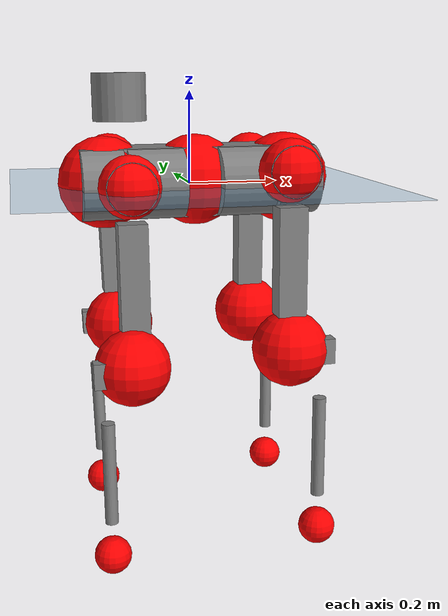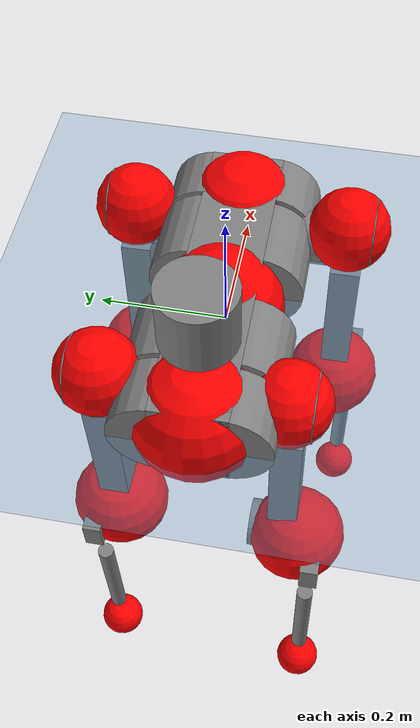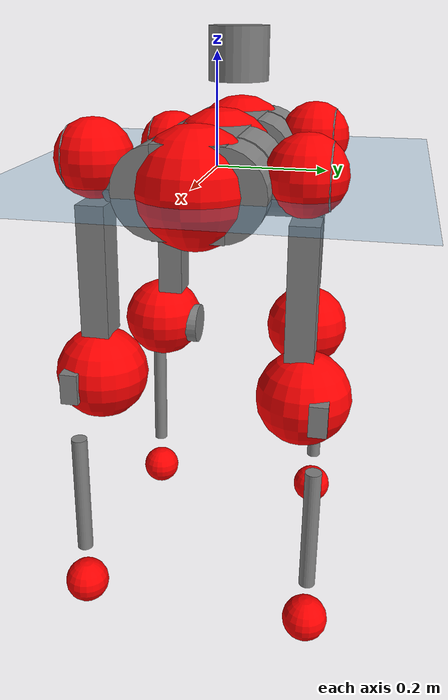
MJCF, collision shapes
<mujoco model="anymal_c">
  <compiler angle="radian" assetdir="assets" balanceinertia="true" inertiafromgeom="false"/>

  <option timestep="0.005" density="1.2" viscosity="2e-05"/>

  <size nkey="1"/>

  <visual>
    <quality shadowsize="8192"/>
    <map shadowclip="0.5"/>
  </visual>

  <default>
    <default class="/">
      <material specular="0" shininess="0.25"/>
      <geom contype="0" conaffinity="0" group="1" solref="-1000 -80"/>
      <site size="0.01 0.005 0.005" group="5"/>
      <general forcelimited="true" forcerange="-80 80" biastype="affine" gainprm="80" biasprm="0 -80 -2"/>
      <default class="anymal_c">
        <joint armature="0.01" damping="0.01" frictionloss="0.1"/>
        <default class="visual">
          <geom type="mesh" group="2"/>
          <default class="visual_zflip"/>
        </default>
        <default class="collision">
          <geom type="cylinder" group="3"/>
          <default class="foot">
            <geom size="0.03 0 0" type="sphere" condim="6" priority="1" friction="0.8 0.02 0.01" solimp="0.015 1 0.03"/>
          </default>
        </default>
      </default>
      <default class="reward_collision_sphere">
        <geom group="5" rgba="1 0 0 1"/>
      </default>
    </default>
  </default>

  <asset>
    <texture type="skybox" colorspace="auto" name="//unnamed_texture_0" builtin="gradient" rgb1="0.95 0.95 0.95" rgb2="0.95 0.95 0.95" width="100" height="600"/>
    <texture type="2d" colorspace="auto" name="texplane" builtin="checker" rgb1="0.345 0.575 0.748" rgb2="0.345 0.575 0.748" markrgb="1 1 1" width="512" height="512"/>
    <texture type="2d" colorspace="linear" name="base" file="base.png"/>
    <texture type="2d" colorspace="linear" name="top_shell" file="top_shell.png"/>
    <texture type="2d" colorspace="linear" name="bottom_shell" file="bottom_shell.png"/>
    <texture type="2d" colorspace="linear" name="remote" file="remote.png"/>
    <texture type="2d" colorspace="linear" name="hatch" file="hatch.png"/>
    <texture type="2d" colorspace="linear" name="handle" file="handle.png"/>
    <texture type="2d" colorspace="linear" name="face" file="face.png"/>
    <texture type="2d" colorspace="linear" name="battery" file="battery.png"/>
    <texture type="2d" colorspace="linear" name="lidar_cage" file="lidar_cage.png"/>
    <texture type="2d" colorspace="linear" name="depth_camera" file="depth_camera.png"/>
    <texture type="2d" colorspace="linear" name="wide_angle_camera" file="wide_angle_camera.png"/>
    <texture type="2d" colorspace="linear" name="lidar" file="lidar.png"/>
    <texture type="2d" colorspace="linear" name="drive" file="drive.png"/>
    <texture type="2d" colorspace="linear" name="hip_l" file="hip_l.png"/>
    <texture type="2d" colorspace="linear" name="shank_l" file="shank_l.png"/>
    <texture type="2d" colorspace="linear" name="foot" file="foot.png"/>
    <texture type="2d" colorspace="linear" name="thigh" file="thigh.png"/>
    <texture type="2d" colorspace="linear" name="shank_r" file="shank_r.png"/>
    <texture type="2d" colorspace="linear" name="hip_r" file="hip_r.png"/>
    <material name="MatPlane" class="/" texture="texplane" texuniform="true" texrepeat="2 2" specular="0.9" shininess="0.5"/>
    <material name="black_plastic" class="/" rgba="0.007 0.007 0.007 1"/>
    <material name="green" class="/" rgba="0.052 0.178 0.033 1"/>
    <material name="red" class="/" rgba="0.178 0.006 0.005 1"/>
    <material name="yellow" class="/" rgba="0.178 0.119 0.006 1"/>
    <material name="lwl" class="/" rgba="0.8 0.8 0.8 1"/>
    <material name="base" class="/" texture="base"/>
    <material name="top_shell" class="/" texture="top_shell"/>
    <material name="bottom_shell" class="/" texture="bottom_shell"/>
    <material name="hip_l" class="/" texture="hip_l"/>
    <material name="thigh" class="/" texture="thigh"/>
    <material name="shank_l" class="/" texture="shank_l"/>
    <material name="foot" class="/" texture="foot"/>
    <material name="hip_r" class="/" texture="hip_r"/>
    <material name="shank" class="/" texture="shank_r"/>
    <material name="hatch" class="/" texture="hatch"/>
    <material name="remote" class="/" texture="remote"/>
    <material name="handle" class="/" texture="handle"/>
    <material name="face" class="/" texture="face"/>
    <material name="depth_camera" class="/" texture="depth_camera"/>
    <material name="wide_angle_camera" class="/" texture="wide_angle_camera"/>
    <material name="battery" class="/" texture="battery"/>
    <material name="lidar_cage" class="/" texture="lidar_cage"/>
    <material name="lidar" class="/" texture="lidar"/>
    <material name="drive" class="/" texture="drive"/>
    <mesh name="base_0" class="/" file="base_0.obj"/>
    <mesh name="base_1" class="/" file="base_1.obj"/>
    <mesh name="base_2" class="/" file="base_2.obj"/>
    <mesh name="base_3" class="/" file="base_3.obj"/>
    <mesh name="base_4" class="/" file="base_4.obj"/>
    <mesh name="base_5" class="/" file="base_5.obj"/>
    <mesh name="top_shell" class="/" file="top_shell.obj"/>
    <mesh name="bottom_shell" class="/" file="bottom_shell.obj"/>
    <mesh name="remote" class="/" file="remote.obj"/>
    <mesh name="handle" class="/" file="handle.obj"/>
    <mesh name="face" class="/" file="face.obj"/>
    <mesh name="wide_angle_camera" class="/" file="wide_angle_camera.obj"/>
    <mesh name="depth_camera" class="/" file="depth_camera.obj"/>
    <mesh name="battery" class="/" file="battery.obj"/>
    <mesh name="lidar_cage" class="/" file="lidar_cage.obj"/>
    <mesh name="lidar" class="/" file="lidar.obj"/>
    <mesh name="drive" class="/" file="drive.obj"/>
    <mesh name="hip_l" class="/" file="hip_l.obj"/>
    <mesh name="thigh" class="/" file="thigh.obj"/>
    <mesh name="shank_l" class="/" file="shank_l.obj"/>
    <mesh name="foot" class="/" file="foot.obj"/>
    <mesh name="hip_r" class="/" file="hip_r.obj"/>
    <mesh name="hatch" class="/" file="hatch.obj"/>
    <mesh name="shank_r" class="/" file="shank_r.obj"/>
  </asset>

  <worldbody>
    <geom name="floor" class="/" size="100 100 0.125" type="plane" group="0" material="MatPlane"/>
    <light name="toplight_shadow" class="/" pos="0 0 5" dir="0.0990148 0.0990148 -0.990148" type="directional" ambient="0.04 0.04 0.04" diffuse="0.55 0.55 0.55" specular="0.12 0.12 0.12"/>
    <light name="toplight_fill" class="/" pos="0 0 5" dir="0.0990148 0.0990148 -0.990148" type="directional" castshadow="false" ambient="0.04 0.04 0.04" diffuse="0.3 0.3 0.3" specular="0.08 0.08 0.08"/>
    <body name="trunk" childclass="anymal_c" pos="0.0148928 0.0106948 0.00677671" quat="0.999981 0.000323584 -0.00403993 0.00459691">
      <inertial pos="0.0167228 0.0019758 0.0696639" quat="0.501903 0.476944 0.523715 0.496327" mass="10.5997" diaginertia="0.0136856 0.101894 0.851815"/>
      <joint name="//unnamed_joint_0" type="free" armature="0" damping="0" frictionloss="0"/>
      <geom name="//unnamed_geom_1" class="visual" material="green" mesh="base_0"/>
      <geom name="//unnamed_geom_2" class="visual" material="yellow" mesh="base_1"/>
      <geom name="//unnamed_geom_3" class="visual" material="red" mesh="base_2"/>
      <geom name="//unnamed_geom_4" class="visual" material="black_plastic" mesh="base_3"/>
      <geom name="//unnamed_geom_5" class="visual" material="lwl" mesh="base_4"/>
      <geom name="//unnamed_geom_6" class="visual" material="base" mesh="base_5"/>
      <geom name="trunk_1" class="collision" size="0.243422 0.0587569 0.0755446" type="box"/>
      <geom name="trunk_2" class="collision" size="0.0755446 0.0608554" pos="0.0994465 0.0489327 0" quat="0.707107 0 0.707107 0"/>
      <geom name="trunk_3" class="collision" size="0.0755446 0.0608554" pos="-0.0994465 0.0489327 0" quat="0.707107 0 0.707107 0"/>
      <geom name="trunk_4" class="collision" size="0.0755446 0.0608554" pos="0.0994465 -0.0489327 0" quat="0.707107 0 0.707107 0"/>
      <geom name="trunk_5" class="collision" size="0.0755446 0.0608554" pos="-0.0994465 -0.0489327 0" quat="0.707107 0 0.707107 0"/>
      <geom name="//unnamed_geom_12" class="visual" material="top_shell" mesh="top_shell"/>
      <geom name="//unnamed_geom_13" class="visual" material="bottom_shell" mesh="bottom_shell"/>
      <geom name="//unnamed_geom_14" class="visual" material="remote" mesh="remote"/>
      <geom name="//unnamed_geom_15" class="visual" material="handle" mesh="handle"/>
      <geom name="//unnamed_geom_16" class="visual" pos="0.18952 0 0" quat="1 0 0 0" material="face" mesh="face"/>
      <geom name="trunk_6" class="collision" size="0.0461661 0.0587569 0.0755446" pos="0.214667 0 0" type="box"/>
      <geom name="//unnamed_geom_18" class="collision" size="0.0755446 0.0461661" pos="0.214667 0.0489327 0" quat="0.707107 0 0.707107 0"/>
      <geom name="//unnamed_geom_19" class="collision" size="0.0755446 0.0461661" pos="0.214667 -0.0489327 0" quat="0.707107 0 0.707107 0"/>
      <geom name="//unnamed_geom_20" class="visual" pos="0.211116 0 -0.0466427" quat="0.965926 0 0.258819 0" material="depth_camera" mesh="depth_camera"/>
      <geom name="//unnamed_geom_21" class="visual" pos="0.234557 0 0.0203875" material="wide_angle_camera" mesh="wide_angle_camera"/>
      <geom name="//unnamed_geom_22" class="visual_zflip" pos="-0.18952 0 0" quat="0 0 0 1" material="face" mesh="face"/>
      <geom name="trunk_7" class="collision" size="0.0461661 0.0587569 0.0755446" pos="-0.214667 0 0" quat="0 0 0 1" type="box"/>
      <geom name="//unnamed_geom_24" class="collision" size="0.0755446 0.0461661" pos="-0.214667 -0.0489327 0" quat="0 -0.707107 0 0.707107"/>
      <geom name="//unnamed_geom_25" class="collision" size="0.0755446 0.0461661" pos="-0.214667 0.0489327 0" quat="0 -0.707107 0 0.707107"/>
      <geom name="//unnamed_geom_26" class="visual" pos="-0.211116 0 -0.0466427" quat="0 -0.258819 0 0.965926" material="depth_camera" mesh="depth_camera"/>
      <geom name="//unnamed_geom_27" class="visual_zflip" pos="-0.234557 0 0.0203875" quat="0 0 0 1" material="wide_angle_camera" mesh="wide_angle_camera"/>
      <geom name="//unnamed_geom_28" class="visual" material="battery" mesh="battery"/>
      <geom name="//unnamed_geom_29" class="visual" pos="0 0.0566591 0.0326875" quat="0.683013 -0.183013 0.183013 0.683013" material="depth_camera" mesh="depth_camera"/>
      <geom name="//unnamed_geom_30" class="visual" pos="0 -0.0566591 0.0326875" quat="0.683013 0.183013 0.183013 -0.683013" material="depth_camera" mesh="depth_camera"/>
      <geom name="//unnamed_geom_31" class="visual" pos="-0.16643 0 0.100099" quat="1 0 0 0" material="lidar_cage" mesh="lidar_cage"/>
      <geom name="trunk_8" class="collision" size="0.0587569 0.0503631" pos="-0.16643 0 0.181812"/>
      <geom name="//unnamed_geom_33" class="visual" pos="-0.16643 9.50017e-05 0.193661" quat="0.707107 0 0 -0.707107" material="lidar" mesh="lidar"/>
      <geom name="//unnamed_geom_34" class="visual" pos="0.137122 0.0729354 -1.14343e-08" quat="0.258819 0.965926 0 0" material="drive" mesh="drive"/>
      <geom name="//unnamed_geom_35" class="visual" pos="0.137122 -0.0729354 1.14343e-08" quat="0.258819 -0.965926 0 0" material="drive" mesh="drive"/>
      <geom name="//unnamed_geom_36" class="visual" pos="-0.137122 0.0729354 1.14343e-08" quat="0 0 0.965926 -0.258819" material="drive" mesh="drive"/>
      <geom name="//unnamed_geom_37" class="visual" pos="-0.137122 -0.0729354 -1.14343e-08" quat="0 0 -0.965926 -0.258819" material="drive" mesh="drive"/>
      <geom name="//unnamed_geom_38" class="visual" pos="0.0530381 0 0.099418" quat="1 0 0 0" material="hatch" mesh="hatch"/>
      <geom name="//unnamed_geom_39" class="reward_collision_sphere" size="0.100726"/>
      <geom name="//unnamed_geom_40" class="reward_collision_sphere" size="0.100726" pos="0.205751 0 0"/>
      <geom name="//unnamed_geom_41" class="reward_collision_sphere" size="0.100726" pos="-0.205751 0 0"/>
      <site name="imu" pos="0.109408 -0.0262191 0.0889139" size="0.00839385"/>
      <camera name="track" pos="0 -1.39808 0" quat="0.707107 0.707107 0 0" mode="trackcom"/>
      <camera name="ego_camera" pos="0.205751 0 -0.0544756" quat="-0.5 -0.5 0.5 0.5"/>
      <body name="LF_HIP" pos="0.146675 0.0825155 -0.00687403" quat="0.258123 0.966084 0.00740493 0.000187094">
        <inertial pos="0.0417362 -0.00219545 -0.00269044" quat="-0.130343 0.71395 -0.130998 0.675371" mass="1.42351" diaginertia="0.000101882 0.00080728 0.0114622"/>
        <joint name="LF_HAA" pos="0 0 0" axis="0.999855 -0.00247277 0.0168345" stiffness="0.0303939" range="-0.685955 0.75168" armature="0.00352445" damping="0.0584741" frictionloss="0.0538337"/>
        <geom name="//unnamed_geom_42" class="visual" pos="0 -0.000672627 0.000110478" quat="0.258819 -0.965926 0 0" material="hip_l" mesh="hip_l"/>
        <geom name="//unnamed_geom_43" class="visual" pos="0.0273878 -0.0366055 -0.026037" quat="0.183013 -0.683013 0.683013 0.183013" material="drive" mesh="drive"/>
        <geom name="//unnamed_geom_44" class="collision" size="0.0419692 0.0587569" pos="0.0273878 -0.00836035 -0.00940385" quat="-0.353553 -0.612372 0.612372 -0.353553"/>
        <body name="LF_THIGH" pos="0.0296024 -0.0540618 -0.06361" quat="0.182859 -0.682993 0.68313 0.182803">
          <inertial pos="-0.000753234 -0.0022682 -0.348224" quat="0.992686 0.000201848 -0.078863 0.0914042" mass="1.93043" diaginertia="0.00062264 0.00468092 0.021284"/>
          <joint name="LF_HFE" pos="0 0 0" axis="0.999247 0.0301077 0.024494" range="-2.89374 2.90754" armature="0.00376295" damping="0.0824803" frictionloss="0.0498738"/>
          <geom name="//unnamed_geom_45" class="visual" pos="-0.00481112 -7.5812e-06 0" quat="0.707107 0 0 -0.707107" material="thigh" mesh="thigh"/>
          <geom name="//unnamed_geom_46" class="collision" size="0.05456 0.0335754" pos="0.018289 0 0" quat="0.5 0.5 -0.5 -0.5"/>
          <geom name="//unnamed_geom_47" class="collision" size="0.0314769 0.0251815 0.118617" pos="0.0137168 0 -0.192454" quat="0.707107 0 0 -0.707107" type="box"/>
          <geom name="//unnamed_geom_48" class="visual" pos="0.0458597 0 -0.388139" quat="1 0 0 0" material="drive" mesh="drive"/>
          <geom name="//unnamed_geom_49" class="collision" size="0.0419692 0.0587569" pos="0.0138539 0 -0.388139" quat="0.707107 0 0.707107 0"/>
          <geom name="//unnamed_geom_50" class="reward_collision_sphere" size="0.0671508" pos="0.0114306 0 0"/>
          <body name="LF_SHANK" pos="0.0457742 -0.00435659 -0.386359" quat="0.999987 -0.00305184 0.00238728 -0.0032039">
            <inertial pos="-0.00677215 -0.0512765 -0.0984934" quat="0.985141 -0.171319 -0.0051364 0.0110261" mass="0.327278" diaginertia="0.000219695 0.00139293 0.00595633"/>
            <joint name="LF_KFE" pos="0 0 0" axis="0.999752 -0.0221857 0.00182122" stiffness="0.00300116" range="-3.09915 3.3942" armature="0.0124975" damping="0.0124525" frictionloss="0.0968264"/>
            <geom name="//unnamed_geom_51" class="visual" pos="-0.0015688 -0.00836493 0" quat="0.707107 0 0 -0.707107" material="shank_l" mesh="shank_l"/>
            <geom name="LF_kfe_act" class="collision" size="0.0503631 0.0167877" pos="0.0091445 0 0" quat="0.5 0.5 -0.5 -0.5"/>
            <geom name="//unnamed_geom_53" class="collision" size="0.0482638 0.0283292 0.0159483" pos="0.0091445 -0.040194 0" quat="0.5 0.5 -0.5 -0.5" type="box"/>
            <geom name="//unnamed_geom_54" class="visual" pos="0.00596717 -0.0641761 -0.460278" quat="0.382683 0 0 -0.92388" material="foot" mesh="foot"/>
            <geom name="LF_calf" class="collision" size="0.0146892 0.118565" pos="0.00596679 -0.0614804 -0.230139" quat="0.707107 0 0 -0.707107"/>
            <geom name="LF_foot" class="foot" size="0.0207764" pos="0.00596679 -0.0614804 -0.429636" quat="0.707107 0 0 -0.707107"/>
            <geom name="//unnamed_geom_57" class="reward_collision_sphere" size="0.0839385" pos="-0.0228613 0 0"/>
            <geom name="//unnamed_geom_58" class="reward_collision_sphere" size="0.0419692" pos="0.00596679 -0.0614804 -0.429636"/>
            <site name="LF_foot" class="foot" pos="0.00596679 -0.0614804 -0.429636" quat="0.707107 0 0 -0.707107" size="0.00839385"/>
          </body>
        </body>
      </body>
      <body name="RF_HIP" pos="0.139974 -0.0855296 -4.26136e-07" quat="0.257179 -0.966358 0.00235781 0.00255802">
        <inertial pos="0.0140152 0.00554649 -0.0120522" quat="0.132866 0.682115 0.122689 0.708529" mass="1.12419" diaginertia="0.000105777 0.000750902 0.0150102"/>
        <joint name="RF_HAA" pos="0 0 0" axis="0.999998 -0.00172176 -0.000781309" stiffness="0.0205282" range="-0.670023 0.709969" armature="0.0149713" damping="0.0138497" frictionloss="0.0205924"/>
        <geom name="//unnamed_geom_59" class="visual" pos="0 0.000672621 0.000110478" quat="0.258819 0.965926 0 0" material="hip_r" mesh="hip_r"/>
        <geom name="//unnamed_geom_60" class="visual" pos="0.0273878 0.0366055 -0.026037" quat="0.183013 0.683013 0.683013 -0.183013" material="drive" mesh="drive"/>
        <geom name="//unnamed_geom_61" class="collision" size="0.0419692 0.0587569" pos="0.0273878 0.00836035 -0.00940385" quat="-0.353553 0.612372 0.612372 0.353553"/>
        <body name="RF_THIGH" pos="0.0259509 0.0560172 -0.0705487" quat="0.180002 0.683936 0.681176 -0.189289">
          <inertial pos="0.0250778 0.0156499 -0.329265" quat="0.992741 -0.0109924 -0.0905356 0.0784078" mass="2.35246" diaginertia="0.000652819 0.00588495 0.024388"/>
          <joint name="RF_HFE" pos="0 0 0" axis="0.999842 0.0165783 0.00635413" stiffness="0.0118214" range="-3.02914 3.27087" armature="0.00843749" damping="0.00458638" frictionloss="0.0535671"/>
          <geom name="//unnamed_geom_62" class="visual" pos="-0.00481112 -7.5812e-06 0" quat="0.707107 0 0 -0.707107" material="thigh" mesh="thigh"/>
          <geom name="//unnamed_geom_63" class="collision" size="0.05456 0.0335754" pos="0.018289 0 0" quat="0.5 0.5 0.5 0.5"/>
          <geom name="//unnamed_geom_64" class="collision" size="0.0314769 0.0251815 0.118617" pos="0.0137168 0 -0.192454" quat="0.707107 0 0 0.707107" type="box"/>
          <geom name="//unnamed_geom_65" class="visual" pos="0.0458597 0 -0.388139" quat="1 0 0 0" material="drive" mesh="drive"/>
          <geom name="//unnamed_geom_66" class="collision" size="0.0419692 0.0587569" pos="0.0138539 0 -0.388139" quat="0.707107 0 0.707107 0"/>
          <geom name="//unnamed_geom_67" class="reward_collision_sphere" size="0.0671508" pos="0.0114306 0 0"/>
          <body name="RF_SHANK" pos="0.0355948 0.00263961 -0.389071" quat="1 4.49543e-05 0.000435276 -0.000392843">
            <inertial pos="-0.00596655 0.0419994 -0.104588" quat="0.991522 0.128681 0.00315679 0.0177347" mass="0.275108" diaginertia="0.000143778 0.00148086 0.00435452"/>
            <joint name="RF_KFE" pos="0 0 0" axis="0.998183 -0.060258 -0.000702425" stiffness="0.0462492" range="-3.12072 3.19173" armature="0.00763634" damping="0" frictionloss="0.0635132"/>
            <geom name="//unnamed_geom_68" class="visual" pos="-0.00156879 0.00836491 0" quat="0.707107 0 0 0.707107" material="shank" mesh="shank_r"/>
            <geom name="RF_kfe_act" class="collision" size="0.0503631 0.0167877" pos="0.0091445 0 0" quat="0.5 0.5 0.5 0.5"/>
            <geom name="//unnamed_geom_70" class="collision" size="0.0482638 0.0283292 0.0159483" pos="0.0091445 0.040194 0" quat="0.5 0.5 0.5 0.5" type="box"/>
            <geom name="//unnamed_geom_71" class="visual" pos="0.00596641 0.0641761 -0.460278" quat="0.382683 0 0 0.92388" material="foot" mesh="foot"/>
            <geom name="RF_calf" class="collision" size="0.0146892 0.118565" pos="0.00596679 0.0614804 -0.230139" quat="0.707107 0 0 0.707107"/>
            <geom name="RF_foot" class="foot" size="0.027812" pos="0.00596679 0.0614804 -0.429636" quat="0.707107 0 0 0.707107"/>
            <geom name="//unnamed_geom_74" class="reward_collision_sphere" size="0.0839385" pos="-0.0228613 0 0"/>
            <geom name="//unnamed_geom_75" class="reward_collision_sphere" size="0.0419692" pos="0.00596679 0.0614804 -0.429636"/>
            <site name="RF_foot" class="foot" pos="0.00596679 0.0614804 -0.429636" quat="0.707107 0 0 0.707107" size="0.00839385"/>
          </body>
        </body>
      </body>
      <body name="LH_HIP" pos="-0.133474 0.0690069 -0.00912998" quat="0.00577173 0.00494624 0.96677 -0.255536">
        <inertial pos="0.0110214 0.0149088 -0.0136139" quat="0.136377 0.680537 0.128343 0.708377" mass="1.52543" diaginertia="0.000115824 0.000694289 0.016083"/>
        <joint name="LH_HAA" pos="0 0 0" axis="0.999761 -0.0217804 0.00205602" range="-0.414384 0.661856" armature="0.00801669" damping="0.0183261" frictionloss="0.055914"/>
        <geom name="//unnamed_geom_76" class="visual" pos="0 0.000672621 0.000110478" quat="-0.258819 -0.965926 0 0" material="hip_r" mesh="hip_r"/>
        <geom name="//unnamed_geom_77" class="visual" pos="0.0273878 0.0366055 -0.026037" quat="0.183013 0.683013 0.683013 -0.183013" material="drive" mesh="drive"/>
        <geom name="//unnamed_geom_78" class="collision" size="0.0419692 0.0587569" pos="0.0273878 0.00836035 -0.00940385" quat="-0.353553 0.612372 0.612372 0.353553"/>
        <body name="LH_THIGH" pos="0.0416681 0.0434896 -0.0681975" quat="0.180589 0.68386 0.684538 -0.17644">
          <inertial pos="0.0147824 0.00384255 -0.330814" quat="0.99463 -0.0503342 -0.0810438 0.0401245" mass="2.09331" diaginertia="0.000561266 0.00570004 0.0180411"/>
          <joint name="LH_HFE" pos="0 0 0" axis="0.999985 0.00195829 0.00514165" range="-3.0777 3.1444" armature="0.0121909" damping="0.0828358" frictionloss="0.110141"/>
          <geom name="//unnamed_geom_79" class="visual" pos="-0.00481112 -7.5812e-06 0" quat="0.707107 0 0 -0.707107" material="thigh" mesh="thigh"/>
          <geom name="//unnamed_geom_80" class="collision" size="0.05456 0.0335754" pos="0.018289 0 0" quat="0.5 0.5 -0.5 -0.5"/>
          <geom name="//unnamed_geom_81" class="collision" size="0.0314769 0.0251815 0.118617" pos="0.0137168 0 -0.192454" quat="0.707107 0 0 -0.707107" type="box"/>
          <geom name="//unnamed_geom_82" class="visual" pos="0.0458597 0 -0.388139" quat="1 0 0 0" material="drive" mesh="drive"/>
          <geom name="//unnamed_geom_83" class="collision" size="0.0419692 0.0587569" pos="0.0138539 0 -0.388139" quat="0.707107 0 0.707107 0"/>
          <geom name="//unnamed_geom_84" class="reward_collision_sphere" size="0.0671508" pos="0.0114306 0 0"/>
          <body name="LH_SHANK" pos="0.0400497 -0.00343822 -0.396162" quat="1 -0.00011458 0.000235635 6.07423e-05">
            <inertial pos="0.00246188 0.0423988 -0.118936" quat="0.993189 0.113112 -0.00116889 0.0279156" mass="0.350498" diaginertia="0.000202443 0.00152238 0.00535154"/>
            <joint name="LH_KFE" pos="0 0 0" axis="0.999998 0.00206468 -2.03749e-05" stiffness="0.00775212" range="-3.04171 3.12317" armature="0.0121212" damping="0.0715391" frictionloss="0.0872333"/>
            <geom name="//unnamed_geom_85" class="visual" pos="-0.00156879 0.00836491 0" quat="-0.707107 0 0 -0.707107" material="shank" mesh="shank_r"/>
            <geom name="LH_kfe_act" class="collision" size="0.0503631 0.0167877" pos="0.0091445 0 0" quat="0.5 0.5 -0.5 -0.5"/>
            <geom name="//unnamed_geom_87" class="collision" size="0.0482638 0.0283292 0.0159483" pos="0.0091445 0.040194 0" quat="0.5 0.5 -0.5 -0.5" type="box"/>
            <geom name="//unnamed_geom_88" class="visual" pos="0.00596641 0.0641761 -0.460278" quat="-0.382683 0 0 -0.92388" material="foot" mesh="foot"/>
            <geom name="LH_calf" class="collision" size="0.0146892 0.118565" pos="0.00596679 0.0614804 -0.230139" quat="0.707107 0 0 -0.707107"/>
            <geom name="LH_foot" class="foot" size="0.0151708" pos="0.00596679 0.0614804 -0.429636" quat="0.707107 0 0 -0.707107"/>
            <geom name="//unnamed_geom_91" class="reward_collision_sphere" size="0.0839385" pos="-0.0228613 0 0"/>
            <geom name="//unnamed_geom_92" class="reward_collision_sphere" size="0.0419692" pos="0.00596679 0.0614804 -0.429636"/>
            <site name="LH_foot" class="foot" pos="0.00596679 0.0614804 -0.429636" quat="0.707107 0 0 -0.707107" size="0.00839385"/>
          </body>
        </body>
      </body>
      <body name="RH_HIP" pos="-0.13862 -0.0582196 -0.0119577" quat="-0.000381834 -0.00490685 -0.966521 -0.25654">
        <inertial pos="0.0258084 -0.0226842 -0.0111621" quat="-0.19311 0.709477 -0.150157 0.660912" mass="1.67349" diaginertia="0.0001044 0.000725574 0.0168646"/>
        <joint name="RH_HAA" pos="0 0 0" axis="0.99983 -0.0179651 0.00418564" range="-0.791555 0.49494" armature="0.001503" damping="0" frictionloss="0.139192"/>
        <geom name="//unnamed_geom_93" class="visual" pos="0 -0.000672627 0.000110478" quat="-0.258819 0.965926 0 0" material="hip_l" mesh="hip_l"/>
        <geom name="//unnamed_geom_94" class="visual" pos="0.0273878 -0.0366055 -0.026037" quat="-0.183013 0.683013 -0.683013 -0.183013" material="drive" mesh="drive"/>
        <geom name="//unnamed_geom_95" class="collision" size="0.0419692 0.0587569" pos="0.0273878 -0.00836035 -0.00940385" quat="0.353553 0.612372 -0.612372 0.353553"/>
        <body name="RH_THIGH" pos="0.026966 -0.0469766 -0.0446831" quat="-0.186263 0.681314 -0.683657 -0.183657">
          <inertial pos="0.0135208 0.00800619 -0.335913" quat="0.993252 -0.00536901 -0.0792627 0.0844926" mass="2.15955" diaginertia="0.00071188 0.00538704 0.024877"/>
          <joint name="RH_HFE" pos="0 0 0" axis="0.999795 0.0202306 -0.000622923" stiffness="0.0521085" range="-2.86187 2.94989" armature="0.00505461" damping="0.0264381" frictionloss="0.105173"/>
          <geom name="//unnamed_geom_96" class="visual" pos="-0.00481112 -7.5812e-06 0" quat="0.707107 0 0 -0.707107" material="thigh" mesh="thigh"/>
          <geom name="//unnamed_geom_97" class="collision" size="0.05456 0.0335754" pos="0.018289 0 0" quat="0.5 0.5 0.5 0.5"/>
          <geom name="//unnamed_geom_98" class="collision" size="0.0314769 0.0251815 0.118617" pos="0.0137168 0 -0.192454" quat="0.707107 0 0 0.707107" type="box"/>
          <geom name="//unnamed_geom_99" class="visual" pos="0.0458597 0 -0.388139" quat="1 0 0 0" material="drive" mesh="drive"/>
          <geom name="//unnamed_geom_100" class="collision" size="0.0419692 0.0587569" pos="0.0138539 0 -0.388139" quat="0.707107 0 0.707107 0"/>
          <geom name="//unnamed_geom_101" class="reward_collision_sphere" size="0.0671508" pos="0.0114306 0 0"/>
          <body name="RH_SHANK" pos="0.062862 -0.0112603 -0.383642" quat="0.999998 -0.00144849 -8.81542e-05 0.00121448">
            <inertial pos="-0.0137254 -0.0418254 -0.118654" quat="0.990518 -0.137145 0.00807858 -0.00081992" mass="0.332562" diaginertia="0.000215286 0.00208968 0.0054438"/>
            <joint name="RH_KFE" pos="0 0 0" axis="0.999817 0.0167469 0.00926522" range="-3.36147 2.80958" armature="0.0139233" damping="0" frictionloss="0.0619371"/>
            <geom name="//unnamed_geom_102" class="visual" pos="-0.0015688 -0.00836493 0" quat="0.707107 0 0 -0.707107" material="shank_l" mesh="shank_l"/>
            <geom name="RH_kfe_act" class="collision" size="0.0503631 0.0167877" pos="0.0091445 0 0" quat="0.5 0.5 0.5 0.5"/>
            <geom name="//unnamed_geom_104" class="collision" size="0.0482638 0.0283292 0.0159483" pos="0.0091445 -0.040194 0" quat="0.5 0.5 0.5 0.5" type="box"/>
            <geom name="//unnamed_geom_105" class="visual" pos="0.00596717 -0.0641761 -0.460278" quat="0.382683 0 0 -0.92388" material="foot" mesh="foot"/>
            <geom name="RH_calf" class="collision" size="0.0146892 0.118565" pos="0.00596679 -0.0614804 -0.230139" quat="0.707107 0 0 0.707107"/>
            <geom name="RH_foot" class="foot" size="0.0280792" pos="0.00596679 -0.0614804 -0.429636" quat="0.707107 0 0 0.707107"/>
            <geom name="//unnamed_geom_108" class="reward_collision_sphere" size="0.0839385" pos="-0.0228613 0 0"/>
            <geom name="//unnamed_geom_109" class="reward_collision_sphere" size="0.0419692" pos="0.00596679 -0.0614804 -0.429636"/>
            <site name="RH_foot" class="foot" pos="0.00596679 -0.0614804 -0.429636" quat="0.707107 0 0 0.707107" size="0.00839385"/>
          </body>
        </body>
      </body>
    </body>
  </worldbody>

  <contact>
    <pair class="/" geom1="floor" geom2="LF_foot" name="//unnamed_contact_0"/>
    <pair class="/" geom1="floor" geom2="RF_foot" name="//unnamed_contact_1"/>
    <pair class="/" geom1="floor" geom2="LH_foot" name="//unnamed_contact_2"/>
    <pair class="/" geom1="floor" geom2="RH_foot" name="//unnamed_contact_3"/>
  </contact>

  <actuator>
    <general name="LF_HAA" class="/" joint="LF_HAA" forcerange="-71.4441 71.4441" gainprm="65.5682" biasprm="0 -65.5682 -1.67894"/>
    <general name="LF_HFE" class="/" joint="LF_HFE" forcerange="-88.435 88.435" gainprm="65.5682" biasprm="0 -65.5682 -1.67894"/>
    <general name="LF_KFE" class="/" joint="LF_KFE" forcerange="-71.4026 71.4026" gainprm="65.5682" biasprm="0 -65.5682 -1.67894"/>
    <general name="RF_HAA" class="/" joint="RF_HAA" forcerange="-27.0495 27.0495" gainprm="65.5682" biasprm="0 -65.5682 -1.67894"/>
    <general name="RF_HFE" class="/" joint="RF_HFE" forcerange="-66.3329 66.3329" gainprm="65.5682" biasprm="0 -65.5682 -1.67894"/>
    <general name="RF_KFE" class="/" joint="RF_KFE" forcerange="-95.6554 95.6554" gainprm="65.5682" biasprm="0 -65.5682 -1.67894"/>
    <general name="LH_HAA" class="/" joint="LH_HAA" forcerange="-73.8562 73.8562" gainprm="65.5682" biasprm="0 -65.5682 -1.67894"/>
    <general name="LH_HFE" class="/" joint="LH_HFE" forcerange="-74.1827 74.1827" gainprm="65.5682" biasprm="0 -65.5682 -1.67894"/>
    <general name="LH_KFE" class="/" joint="LH_KFE" forcerange="-63.6278 63.6278" gainprm="65.5682" biasprm="0 -65.5682 -1.67894"/>
    <general name="RH_HAA" class="/" joint="RH_HAA" forcerange="-60.191 60.191" gainprm="65.5682" biasprm="0 -65.5682 -1.67894"/>
    <general name="RH_HFE" class="/" joint="RH_HFE" forcerange="-81.7094 81.7094" gainprm="65.5682" biasprm="0 -65.5682 -1.67894"/>
    <general name="RH_KFE" class="/" joint="RH_KFE" forcerange="-32.1587 32.1587" gainprm="65.5682" biasprm="0 -65.5682 -1.67894"/>
  </actuator>

  <sensor>
    <gyro site="imu" name="imu_angular_velocity"/>
    <velocimeter site="imu" name="imu_linear_velocity"/>
    <framelinvel objtype="site" objname="LF_foot" name="LF_foot_global_linear_velocity"/>
    <framelinvel objtype="site" objname="RF_foot" name="RF_foot_global_linear_velocity"/>
    <framelinvel objtype="site" objname="LH_foot" name="LH_foot_global_linear_velocity"/>
    <framelinvel objtype="site" objname="RH_foot" name="RH_foot_global_linear_velocity"/>
  </sensor>

  <keyframe>
    <key name="home" qpos="0 0 0.55 1 0 0 0 0 0.4 -0.8 0 -0.4 0.8 0 -0.4 0.8 0 0.4 -0.8"/>
  </keyframe>
</mujoco>
